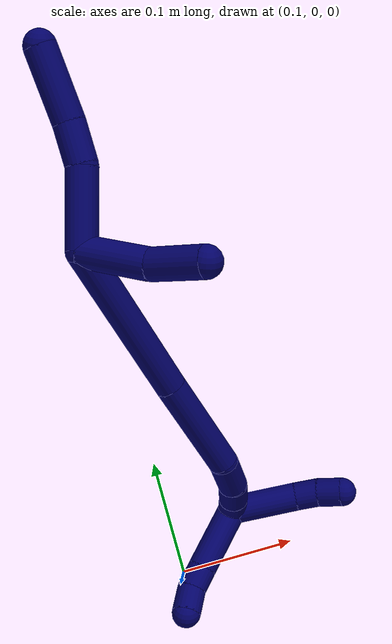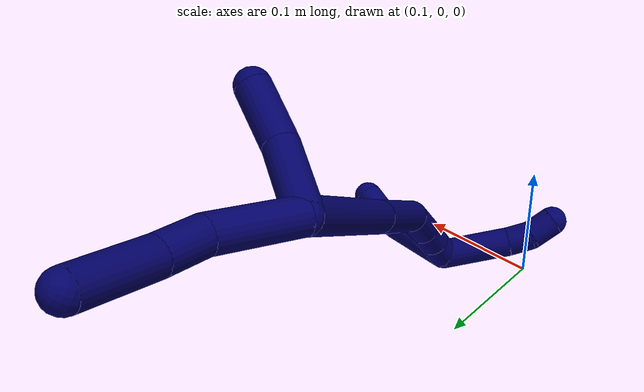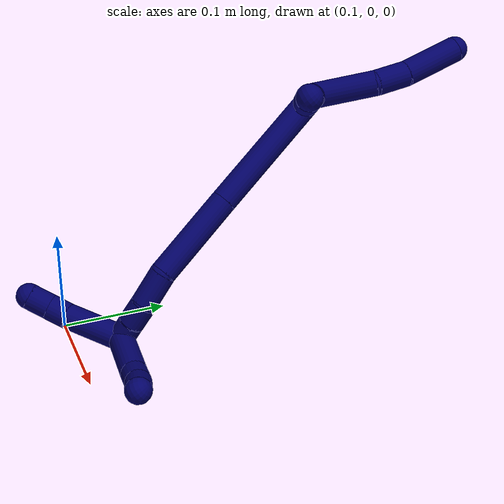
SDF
<sdf version="1.7">
 <world name="default">
  <model name="7">
   <static>0</static>
   <link name="7">
    <collision name="collision-cylinder-e_1_2_8">
     <pose>0.012629 0.006346 0.027186 -0.229335 0.42483 -0.049668</pose>
     <geometry><cylinder><radius>0.0125</radius><length>0.06128</length></cylinder></geometry>
     <surface>
      <friction><ode><mu>1.16</mu><mu2>1.16</mu2><slip1>0</slip1><slip2>0</slip2></ode></friction>
      <contact><ode><kp>1e+06</kp><kd>1</kd><max_vel>0</max_vel><min_depth>0.001</min_depth></ode></contact>
     </surface>
    </collision>
    <visual name="visual-cylinder-e_1_2_8">
     <pose>0.012629 0.006346 0.027186 -0.229335 0.42483 -0.049668</pose>
     <geometry><cylinder><radius>0.0125</radius><length>0.06128</length></cylinder></geometry>
     <material><ambient>0.003922 0 0.403922 1</ambient></material>
    </visual>
    <collision name="collision-cylinder-e_2_8_9">
     <pose>0.030492 0.02042 0.06739 -0.535699 0.332869 -0.092142</pose>
     <geometry><cylinder><radius>0.0125</radius><length>0.032037</length></cylinder></geometry>
     <surface>
      <friction><ode><mu>1.16</mu><mu2>1.16</mu2><slip1>0</slip1><slip2>0</slip2></ode></friction>
      <contact><ode><kp>1e+06</kp><kd>1</kd><max_vel>0</max_vel><min_depth>0.001</min_depth></ode></contact>
     </surface>
    </collision>
    <visual name="visual-cylinder-e_2_8_9">
     <pose>0.030492 0.02042 0.06739 -0.535699 0.332869 -0.092142</pose>
     <geometry><cylinder><radius>0.0125</radius><length>0.032037</length></cylinder></geometry>
     <material><ambient>0.003922 0 0.403922 1</ambient></material>
    </visual>
    <collision name="collision-cylinder-e_3_9_6">
     <pose>0.040839 0.042348 0.104396 -0.534483 0.181405 -0.049793</pose>
     <geometry><cylinder><radius>0.0125</radius><length>0.056683</length></cylinder></geometry>
     <surface>
      <friction><ode><mu>1.16</mu><mu2>1.16</mu2><slip1>0</slip1><slip2>0</slip2></ode></friction>
      <contact><ode><kp>1e+06</kp><kd>1</kd><max_vel>0</max_vel><min_depth>0.001</min_depth></ode></contact>
     </surface>
    </collision>
    <visual name="visual-cylinder-e_3_9_6">
     <pose>0.040839 0.042348 0.104396 -0.534483 0.181405 -0.049793</pose>
     <geometry><cylinder><radius>0.0125</radius><length>0.056683</length></cylinder></geometry>
     <material><ambient>0.003922 0 0.403922 1</ambient></material>
    </visual>
    <collision name="collision-cylinder-e_1_2_10">
     <pose>-0.001559 -0.027419 0.001872 1.50262 -0.056682 -0.052946</pose>
     <geometry><cylinder><radius>0.0125</radius><length>0.055054</length></cylinder></geometry>
     <surface>
      <friction><ode><mu>1.16</mu><mu2>1.16</mu2><slip1>0</slip1><slip2>0</slip2></ode></friction>
      <contact><ode><kp>1e+06</kp><kd>1</kd><max_vel>0</max_vel><min_depth>0.001</min_depth></ode></contact>
     </surface>
    </collision>
    <visual name="visual-cylinder-e_1_2_10">
     <pose>-0.001559 -0.027419 0.001872 1.50262 -0.056682 -0.052946</pose>
     <geometry><cylinder><radius>0.0125</radius><length>0.055054</length></cylinder></geometry>
     <material><ambient>0.003922 0 0.403922 1</ambient></material>
    </visual>
    <collision name="collision-cylinder-e_2_10_5">
     <pose>-0.00582 -0.075972 0.010893 1.24463 -0.120474 -0.086479</pose>
     <geometry><cylinder><radius>0.0125</radius><length>0.044946</length></cylinder></geometry>
     <surface>
      <friction><ode><mu>1.16</mu><mu2>1.16</mu2><slip1>0</slip1><slip2>0</slip2></ode></friction>
      <contact><ode><kp>1e+06</kp><kd>1</kd><max_vel>0</max_vel><min_depth>0.001</min_depth></ode></contact>
     </surface>
    </collision>
    <visual name="visual-cylinder-e_2_10_5">
     <pose>-0.00582 -0.075972 0.010893 1.24463 -0.120474 -0.086479</pose>
     <geometry><cylinder><radius>0.0125</radius><length>0.044946</length></cylinder></geometry>
     <material><ambient>0.003922 0 0.403922 1</ambient></material>
    </visual>
    <collision name="collision-cylinder-e_1_2_11">
     <pose>0.013769 -0.033014 -0.056684 2.6142 0.206896 0.734206</pose>
     <geometry><cylinder><radius>0.0125</radius><length>0.134054</length></cylinder></geometry>
     <surface>
      <friction><ode><mu>1.16</mu><mu2>1.16</mu2><slip1>0</slip1><slip2>0</slip2></ode></friction>
      <contact><ode><kp>1e+06</kp><kd>1</kd><max_vel>0</max_vel><min_depth>0.001</min_depth></ode></contact>
     </surface>
    </collision>
    <visual name="visual-cylinder-e_1_2_11">
     <pose>0.013769 -0.033014 -0.056684 2.6142 0.206896 0.734206</pose>
     <geometry><cylinder><radius>0.0125</radius><length>0.134054</length></cylinder></geometry>
     <material><ambient>0.003922 0 0.403922 1</ambient></material>
    </visual>
    <collision name="collision-cylinder-e_2_11_12">
     <pose>0.03683 -0.088548 -0.150347 2.5946 0.211422 0.723215</pose>
     <geometry><cylinder><radius>0.0125</radius><length>0.088564</length></cylinder></geometry>
     <surface>
      <friction><ode><mu>1.16</mu><mu2>1.16</mu2><slip1>0</slip1><slip2>0</slip2></ode></friction>
      <contact><ode><kp>1e+06</kp><kd>1</kd><max_vel>0</max_vel><min_depth>0.001</min_depth></ode></contact>
     </surface>
    </collision>
    <visual name="visual-cylinder-e_2_11_12">
     <pose>0.03683 -0.088548 -0.150347 2.5946 0.211422 0.723215</pose>
     <geometry><cylinder><radius>0.0125</radius><length>0.088564</length></cylinder></geometry>
     <material><ambient>0.003922 0 0.403922 1</ambient></material>
    </visual>
    <collision name="collision-cylinder-e_3_12_13">
     <pose>0.052621 -0.11475 -0.202846 2.90863 0.386849 2.06461</pose>
     <geometry><cylinder><radius>0.0125</radius><length>0.034446</length></cylinder></geometry>
     <surface>
      <friction><ode><mu>1.16</mu><mu2>1.16</mu2><slip1>0</slip1><slip2>0</slip2></ode></friction>
      <contact><ode><kp>1e+06</kp><kd>1</kd><max_vel>0</max_vel><min_depth>0.001</min_depth></ode></contact>
     </surface>
    </collision>
    <visual name="visual-cylinder-e_3_12_13">
     <pose>0.052621 -0.11475 -0.202846 2.90863 0.386849 2.06461</pose>
     <geometry><cylinder><radius>0.0125</radius><length>0.034446</length></cylinder></geometry>
     <material><ambient>0.003922 0 0.403922 1</ambient></material>
    </visual>
    <collision name="collision-cylinder-e_4_13_14">
     <pose>0.06311 -0.118401 -0.229042 -3.13872 0.357772 -3.12572</pose>
     <geometry><cylinder><radius>0.0125</radius><length>0.022796</length></cylinder></geometry>
     <surface>
      <friction><ode><mu>1.16</mu><mu2>1.16</mu2><slip1>0</slip1><slip2>0</slip2></ode></friction>
      <contact><ode><kp>1e+06</kp><kd>1</kd><max_vel>0</max_vel><min_depth>0.001</min_depth></ode></contact>
     </surface>
    </collision>
    <visual name="visual-cylinder-e_4_13_14">
     <pose>0.06311 -0.118401 -0.229042 -3.13872 0.357772 -3.12572</pose>
     <geometry><cylinder><radius>0.0125</radius><length>0.022796</length></cylinder></geometry>
     <material><ambient>0.003922 0 0.403922 1</ambient></material>
    </visual>
    <collision name="collision-cylinder-e_5_14_1">
     <pose>0.070656 -0.117574 -0.249106 -3.05688 0.360742 -2.68485</pose>
     <geometry><cylinder><radius>0.0125</radius><length>0.020138</length></cylinder></geometry>
     <surface>
      <friction><ode><mu>1.16</mu><mu2>1.16</mu2><slip1>0</slip1><slip2>0</slip2></ode></friction>
      <contact><ode><kp>1e+06</kp><kd>1</kd><max_vel>0</max_vel><min_depth>0.001</min_depth></ode></contact>
     </surface>
    </collision>
    <visual name="visual-cylinder-e_5_14_1">
     <pose>0.070656 -0.117574 -0.249106 -3.05688 0.360742 -2.68485</pose>
     <geometry><cylinder><radius>0.0125</radius><length>0.020138</length></cylinder></geometry>
     <material><ambient>0.003922 0 0.403922 1</ambient></material>
    </visual>
    <collision name="collision-cylinder-e_1_1_15">
     <pose>0.052238 -0.111783 -0.276093 -2.86516 -0.876473 2.5645</pose>
     <geometry><cylinder><radius>0.0125</radius><length>0.057182</length></cylinder></geometry>
     <surface>
      <friction><ode><mu>1.16</mu><mu2>1.16</mu2><slip1>0</slip1><slip2>0</slip2></ode></friction>
      <contact><ode><kp>1e+06</kp><kd>1</kd><max_vel>0</max_vel><min_depth>0.001</min_depth></ode></contact>
     </surface>
    </collision>
    <visual name="visual-cylinder-e_1_1_15">
     <pose>0.052238 -0.111783 -0.276093 -2.86516 -0.876473 2.5645</pose>
     <geometry><cylinder><radius>0.0125</radius><length>0.057182</length></cylinder></geometry>
     <material><ambient>0.003922 0 0.403922 1</ambient></material>
    </visual>
    <collision name="collision-cylinder-e_2_15_16">
     <pose>0.021743 -0.105373 -0.299182 -2.8889 -0.983862 2.67611</pose>
     <geometry><cylinder><radius>0.0125</radius><length>0.020473</length></cylinder></geometry>
     <surface>
      <friction><ode><mu>1.16</mu><mu2>1.16</mu2><slip1>0</slip1><slip2>0</slip2></ode></friction>
      <contact><ode><kp>1e+06</kp><kd>1</kd><max_vel>0</max_vel><min_depth>0.001</min_depth></ode></contact>
     </surface>
    </collision>
    <visual name="visual-cylinder-e_2_15_16">
     <pose>0.021743 -0.105373 -0.299182 -2.8889 -0.983862 2.67611</pose>
     <geometry><cylinder><radius>0.0125</radius><length>0.020473</length></cylinder></geometry>
     <material><ambient>0.003922 0 0.403922 1</ambient></material>
    </visual>
    <collision name="collision-cylinder-e_3_16_4">
     <pose>0.003124 -0.105487 -0.309204 2.81585 -1.12823 -2.63338</pose>
     <geometry><cylinder><radius>0.0125</radius><length>0.022345</length></cylinder></geometry>
     <surface>
      <friction><ode><mu>1.16</mu><mu2>1.16</mu2><slip1>0</slip1><slip2>0</slip2></ode></friction>
      <contact><ode><kp>1e+06</kp><kd>1</kd><max_vel>0</max_vel><min_depth>0.001</min_depth></ode></contact>
     </surface>
    </collision>
    <visual name="visual-cylinder-e_3_16_4">
     <pose>0.003124 -0.105487 -0.309204 2.81585 -1.12823 -2.63338</pose>
     <geometry><cylinder><radius>0.0125</radius><length>0.022345</length></cylinder></geometry>
     <material><ambient>0.003922 0 0.403922 1</ambient></material>
    </visual>
    <collision name="collision-cylinder-e_1_1_17">
     <pose>0.086486 -0.142104 -0.251206 1.29067 0.435904 0.330436</pose>
     <geometry><cylinder><radius>0.0125</radius><length>0.058148</length></cylinder></geometry>
     <surface>
      <friction><ode><mu>1.16</mu><mu2>1.16</mu2><slip1>0</slip1><slip2>0</slip2></ode></friction>
      <contact><ode><kp>1e+06</kp><kd>1</kd><max_vel>0</max_vel><min_depth>0.001</min_depth></ode></contact>
     </surface>
    </collision>
    <visual name="visual-cylinder-e_1_1_17">
     <pose>0.086486 -0.142104 -0.251206 1.29067 0.435904 0.330436</pose>
     <geometry><cylinder><radius>0.0125</radius><length>0.058148</length></cylinder></geometry>
     <material><ambient>0.003922 0 0.403922 1</ambient></material>
    </visual>
    <collision name="collision-cylinder-e_2_17_18">
     <pose>0.101519 -0.176666 -0.24044 1.2104 0.272441 0.189083</pose>
     <geometry><cylinder><radius>0.0125</radius><length>0.020491</length></cylinder></geometry>
     <surface>
      <friction><ode><mu>1.16</mu><mu2>1.16</mu2><slip1>0</slip1><slip2>0</slip2></ode></friction>
      <contact><ode><kp>1e+06</kp><kd>1</kd><max_vel>0</max_vel><min_depth>0.001</min_depth></ode></contact>
     </surface>
    </collision>
    <visual name="visual-cylinder-e_2_17_18">
     <pose>0.101519 -0.176666 -0.24044 1.2104 0.272441 0.189083</pose>
     <geometry><cylinder><radius>0.0125</radius><length>0.020491</length></cylinder></geometry>
     <material><ambient>0.003922 0 0.403922 1</ambient></material>
    </visual>
    <collision name="collision-cylinder-e_3_18_3">
     <pose>0.105191 -0.196095 -0.233912 1.28029 0.085845 0.063952</pose>
     <geometry><cylinder><radius>0.0125</radius><length>0.021362</length></cylinder></geometry>
     <surface>
      <friction><ode><mu>1.16</mu><mu2>1.16</mu2><slip1>0</slip1><slip2>0</slip2></ode></friction>
      <contact><ode><kp>1e+06</kp><kd>1</kd><max_vel>0</max_vel><min_depth>0.001</min_depth></ode></contact>
     </surface>
    </collision>
    <visual name="visual-cylinder-e_3_18_3">
     <pose>0.105191 -0.196095 -0.233912 1.28029 0.085845 0.063952</pose>
     <geometry><cylinder><radius>0.0125</radius><length>0.021362</length></cylinder></geometry>
     <material><ambient>0.003922 0 0.403922 1</ambient></material>
    </visual>
    <collision name="collision-sphere-3">
     <pose>0.106107 -0.20629 -0.230864 0 -0 0</pose>
     <geometry><sphere><radius>0.0125</radius></sphere></geometry>
     <surface>
      <friction><ode><mu>1.16</mu><mu2>1.16</mu2><slip1>0</slip1><slip2>0</slip2></ode></friction>
      <contact><ode><kp>1e+06</kp><kd>1</kd><max_vel>0</max_vel><min_depth>0.001</min_depth></ode></contact>
     </surface>
    </collision>
    <visual name="visual-sphere-3">
     <pose>0.106107 -0.20629 -0.230864 0 -0 0</pose>
     <geometry><sphere><radius>0.0125</radius></sphere></geometry>
     <material><ambient>0.003922 0 0.403922 1</ambient></material>
    </visual>
    <collision name="collision-sphere-5">
     <pose>-0.008521 -0.097106 0.018041 0 -0 0</pose>
     <geometry><sphere><radius>0.0125</radius></sphere></geometry>
     <surface>
      <friction><ode><mu>1.16</mu><mu2>1.16</mu2><slip1>0</slip1><slip2>0</slip2></ode></friction>
      <contact><ode><kp>1e+06</kp><kd>1</kd><max_vel>0</max_vel><min_depth>0.001</min_depth></ode></contact>
     </surface>
    </collision>
    <visual name="visual-sphere-5">
     <pose>-0.008521 -0.097106 0.018041 0 -0 0</pose>
     <geometry><sphere><radius>0.0125</radius></sphere></geometry>
     <material><ambient>0.003922 0 0.403922 1</ambient></material>
    </visual>
    <collision name="collision-sphere-10">
     <pose>-0.003119 -0.054838 0.003744 0 -0 0</pose>
     <geometry><sphere><radius>0.0125</radius></sphere></geometry>
     <surface>
      <friction><ode><mu>1.16</mu><mu2>1.16</mu2><slip1>0</slip1><slip2>0</slip2></ode></friction>
      <contact><ode><kp>1e+06</kp><kd>1</kd><max_vel>0</max_vel><min_depth>0.001</min_depth></ode></contact>
     </surface>
    </collision>
    <visual name="visual-sphere-10">
     <pose>-0.003119 -0.054838 0.003744 0 -0 0</pose>
     <geometry><sphere><radius>0.0125</radius></sphere></geometry>
     <material><ambient>0.003922 0 0.403922 1</ambient></material>
    </visual>
    <collision name="collision-sphere-6">
     <pose>0.045952 0.056548 0.128385 0 -0 0</pose>
     <geometry><sphere><radius>0.0125</radius></sphere></geometry>
     <surface>
      <friction><ode><mu>1.16</mu><mu2>1.16</mu2><slip1>0</slip1><slip2>0</slip2></ode></friction>
      <contact><ode><kp>1e+06</kp><kd>1</kd><max_vel>0</max_vel><min_depth>0.001</min_depth></ode></contact>
     </surface>
    </collision>
    <visual name="visual-sphere-6">
     <pose>0.045952 0.056548 0.128385 0 -0 0</pose>
     <geometry><sphere><radius>0.0125</radius></sphere></geometry>
     <material><ambient>0.003922 0 0.403922 1</ambient></material>
    </visual>
    <collision name="collision-sphere-9">
     <pose>0.035726 0.028148 0.080408 0 -0 0</pose>
     <geometry><sphere><radius>0.0125</radius></sphere></geometry>
     <surface>
      <friction><ode><mu>1.16</mu><mu2>1.16</mu2><slip1>0</slip1><slip2>0</slip2></ode></friction>
      <contact><ode><kp>1e+06</kp><kd>1</kd><max_vel>0</max_vel><min_depth>0.001</min_depth></ode></contact>
     </surface>
    </collision>
    <visual name="visual-sphere-9">
     <pose>0.035726 0.028148 0.080408 0 -0 0</pose>
     <geometry><sphere><radius>0.0125</radius></sphere></geometry>
     <material><ambient>0.003922 0 0.403922 1</ambient></material>
    </visual>
    <collision name="collision-sphere-2">
     <geometry><sphere><radius>0.0125</radius></sphere></geometry>
     <surface>
      <friction><ode><mu>1.16</mu><mu2>1.16</mu2><slip1>0</slip1><slip2>0</slip2></ode></friction>
      <contact><ode><kp>1e+06</kp><kd>1</kd><max_vel>0</max_vel><min_depth>0.001</min_depth></ode></contact>
     </surface>
    </collision>
    <visual name="visual-sphere-2">
     <geometry><sphere><radius>0.0125</radius></sphere></geometry>
     <material><ambient>0.003922 0 0.403922 1</ambient></material>
    </visual>
    <collision name="collision-sphere-8">
     <pose>0.025258 0.012693 0.054371 0 -0 0</pose>
     <geometry><sphere><radius>0.0125</radius></sphere></geometry>
     <surface>
      <friction><ode><mu>1.16</mu><mu2>1.16</mu2><slip1>0</slip1><slip2>0</slip2></ode></friction>
      <contact><ode><kp>1e+06</kp><kd>1</kd><max_vel>0</max_vel><min_depth>0.001</min_depth></ode></contact>
     </surface>
    </collision>
    <visual name="visual-sphere-8">
     <pose>0.025258 0.012693 0.054371 0 -0 0</pose>
     <geometry><sphere><radius>0.0125</radius></sphere></geometry>
     <material><ambient>0.003922 0 0.403922 1</ambient></material>
    </visual>
    <collision name="collision-sphere-11">
     <pose>0.027538 -0.066029 -0.113368 0 -0 0</pose>
     <geometry><sphere><radius>0.0125</radius></sphere></geometry>
     <surface>
      <friction><ode><mu>1.16</mu><mu2>1.16</mu2><slip1>0</slip1><slip2>0</slip2></ode></friction>
      <contact><ode><kp>1e+06</kp><kd>1</kd><max_vel>0</max_vel><min_depth>0.001</min_depth></ode></contact>
     </surface>
    </collision>
    <visual name="visual-sphere-11">
     <pose>0.027538 -0.066029 -0.113368 0 -0 0</pose>
     <geometry><sphere><radius>0.0125</radius></sphere></geometry>
     <material><ambient>0.003922 0 0.403922 1</ambient></material>
    </visual>
    <collision name="collision-sphere-12">
     <pose>0.046123 -0.111067 -0.187326 0 -0 0</pose>
     <geometry><sphere><radius>0.0125</radius></sphere></geometry>
     <surface>
      <friction><ode><mu>1.16</mu><mu2>1.16</mu2><slip1>0</slip1><slip2>0</slip2></ode></friction>
      <contact><ode><kp>1e+06</kp><kd>1</kd><max_vel>0</max_vel><min_depth>0.001</min_depth></ode></contact>
     </surface>
    </collision>
    <visual name="visual-sphere-12">
     <pose>0.046123 -0.111067 -0.187326 0 -0 0</pose>
     <geometry><sphere><radius>0.0125</radius></sphere></geometry>
     <material><ambient>0.003922 0 0.403922 1</ambient></material>
    </visual>
    <collision name="collision-sphere-13">
     <pose>0.059119 -0.118432 -0.218366 0 -0 0</pose>
     <geometry><sphere><radius>0.0125</radius></sphere></geometry>
     <surface>
      <friction><ode><mu>1.16</mu><mu2>1.16</mu2><slip1>0</slip1><slip2>0</slip2></ode></friction>
      <contact><ode><kp>1e+06</kp><kd>1</kd><max_vel>0</max_vel><min_depth>0.001</min_depth></ode></contact>
     </surface>
    </collision>
    <visual name="visual-sphere-13">
     <pose>0.059119 -0.118432 -0.218366 0 -0 0</pose>
     <geometry><sphere><radius>0.0125</radius></sphere></geometry>
     <material><ambient>0.003922 0 0.403922 1</ambient></material>
    </visual>
    <collision name="collision-sphere-14">
     <pose>0.067102 -0.118371 -0.239718 0 -0 0</pose>
     <geometry><sphere><radius>0.0125</radius></sphere></geometry>
     <surface>
      <friction><ode><mu>1.16</mu><mu2>1.16</mu2><slip1>0</slip1><slip2>0</slip2></ode></friction>
      <contact><ode><kp>1e+06</kp><kd>1</kd><max_vel>0</max_vel><min_depth>0.001</min_depth></ode></contact>
     </surface>
    </collision>
    <visual name="visual-sphere-14">
     <pose>0.067102 -0.118371 -0.239718 0 -0 0</pose>
     <geometry><sphere><radius>0.0125</radius></sphere></geometry>
     <material><ambient>0.003922 0 0.403922 1</ambient></material>
    </visual>
    <collision name="collision-sphere-1">
     <pose>0.07421 -0.116776 -0.258493 0 -0 0</pose>
     <geometry><sphere><radius>0.0125</radius></sphere></geometry>
     <surface>
      <friction><ode><mu>1.16</mu><mu2>1.16</mu2><slip1>0</slip1><slip2>0</slip2></ode></friction>
      <contact><ode><kp>1e+06</kp><kd>1</kd><max_vel>0</max_vel><min_depth>0.001</min_depth></ode></contact>
     </surface>
    </collision>
    <visual name="visual-sphere-1">
     <pose>0.07421 -0.116776 -0.258493 0 -0 0</pose>
     <geometry><sphere><radius>0.0125</radius></sphere></geometry>
     <material><ambient>0.003922 0 0.403922 1</ambient></material>
    </visual>
    <collision name="collision-sphere-18">
     <pose>0.104275 -0.185899 -0.23696 0 -0 0</pose>
     <geometry><sphere><radius>0.0125</radius></sphere></geometry>
     <surface>
      <friction><ode><mu>1.16</mu><mu2>1.16</mu2><slip1>0</slip1><slip2>0</slip2></ode></friction>
      <contact><ode><kp>1e+06</kp><kd>1</kd><max_vel>0</max_vel><min_depth>0.001</min_depth></ode></contact>
     </surface>
    </collision>
    <visual name="visual-sphere-18">
     <pose>0.104275 -0.185899 -0.23696 0 -0 0</pose>
     <geometry><sphere><radius>0.0125</radius></sphere></geometry>
     <material><ambient>0.003922 0 0.403922 1</ambient></material>
    </visual>
    <collision name="collision-sphere-15">
     <pose>0.030267 -0.10679 -0.293693 0 -0 0</pose>
     <geometry><sphere><radius>0.0125</radius></sphere></geometry>
     <surface>
      <friction><ode><mu>1.16</mu><mu2>1.16</mu2><slip1>0</slip1><slip2>0</slip2></ode></friction>
      <contact><ode><kp>1e+06</kp><kd>1</kd><max_vel>0</max_vel><min_depth>0.001</min_depth></ode></contact>
     </surface>
    </collision>
    <visual name="visual-sphere-15">
     <pose>0.030267 -0.10679 -0.293693 0 -0 0</pose>
     <geometry><sphere><radius>0.0125</radius></sphere></geometry>
     <material><ambient>0.003922 0 0.403922 1</ambient></material>
    </visual>
    <collision name="collision-sphere-16">
     <pose>0.01322 -0.103956 -0.304671 0 -0 0</pose>
     <geometry><sphere><radius>0.0125</radius></sphere></geometry>
     <surface>
      <friction><ode><mu>1.16</mu><mu2>1.16</mu2><slip1>0</slip1><slip2>0</slip2></ode></friction>
      <contact><ode><kp>1e+06</kp><kd>1</kd><max_vel>0</max_vel><min_depth>0.001</min_depth></ode></contact>
     </surface>
    </collision>
    <visual name="visual-sphere-16">
     <pose>0.01322 -0.103956 -0.304671 0 -0 0</pose>
     <geometry><sphere><radius>0.0125</radius></sphere></geometry>
     <material><ambient>0.003922 0 0.403922 1</ambient></material>
    </visual>
    <collision name="collision-sphere-4">
     <pose>-0.006972 -0.107018 -0.313737 0 -0 0</pose>
     <geometry><sphere><radius>0.0125</radius></sphere></geometry>
     <surface>
      <friction><ode><mu>1.16</mu><mu2>1.16</mu2><slip1>0</slip1><slip2>0</slip2></ode></friction>
      <contact><ode><kp>1e+06</kp><kd>1</kd><max_vel>0</max_vel><min_depth>0.001</min_depth></ode></contact>
     </surface>
    </collision>
    <visual name="visual-sphere-4">
     <pose>-0.006972 -0.107018 -0.313737 0 -0 0</pose>
     <geometry><sphere><radius>0.0125</radius></sphere></geometry>
     <material><ambient>0.003922 0 0.403922 1</ambient></material>
    </visual>
    <collision name="collision-sphere-17">
     <pose>0.098762 -0.167432 -0.24392 0 -0 0</pose>
     <geometry><sphere><radius>0.0125</radius></sphere></geometry>
     <surface>
      <friction><ode><mu>1.16</mu><mu2>1.16</mu2><slip1>0</slip1><slip2>0</slip2></ode></friction>
      <contact><ode><kp>1e+06</kp><kd>1</kd><max_vel>0</max_vel><min_depth>0.001</min_depth></ode></contact>
     </surface>
    </collision>
    <visual name="visual-sphere-17">
     <pose>0.098762 -0.167432 -0.24392 0 -0 0</pose>
     <geometry><sphere><radius>0.0125</radius></sphere></geometry>
     <material><ambient>0.003922 0 0.403922 1</ambient></material>
    </visual>
    <inertial>
     <pose>0.035144 -0.066329 -0.108209 0 -0 0</pose>
     <mass>0.75</mass>
     <inertia><ixx>0.000454</ixx><ixy>0</ixy><ixz>0</ixz><iyy>9.3e-05</iyy><iyz>0</iyz><izz>8.7e-05</izz></inertia>
    </inertial>
   </link>
   <pose>0.100648 0.256641 0.203483 -0.326206 0.864135 0.770229</pose>
  </model>
 </world>
</sdf>
